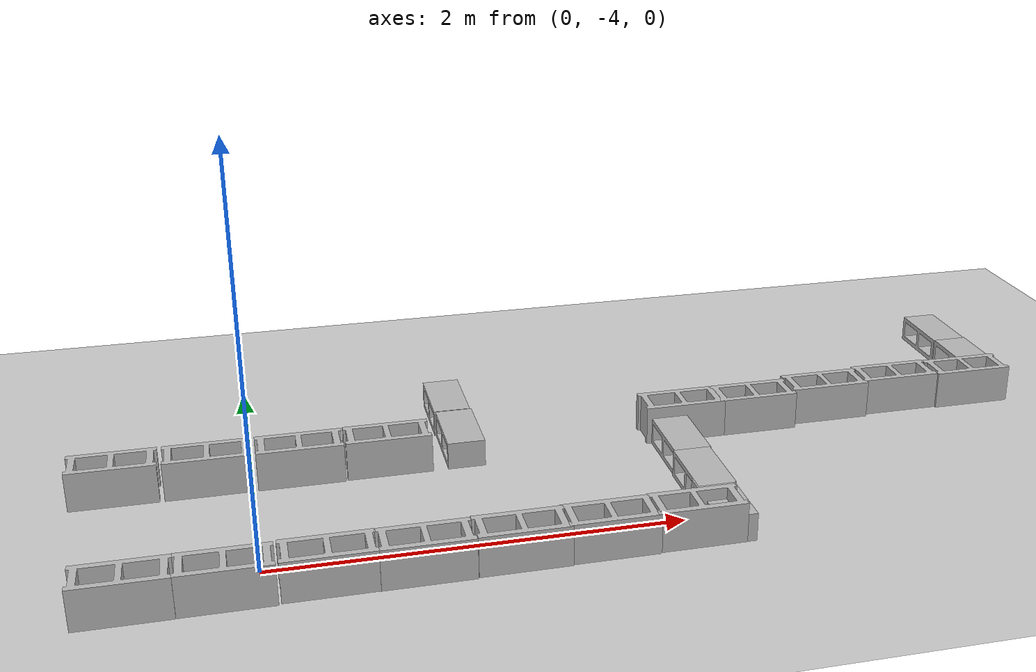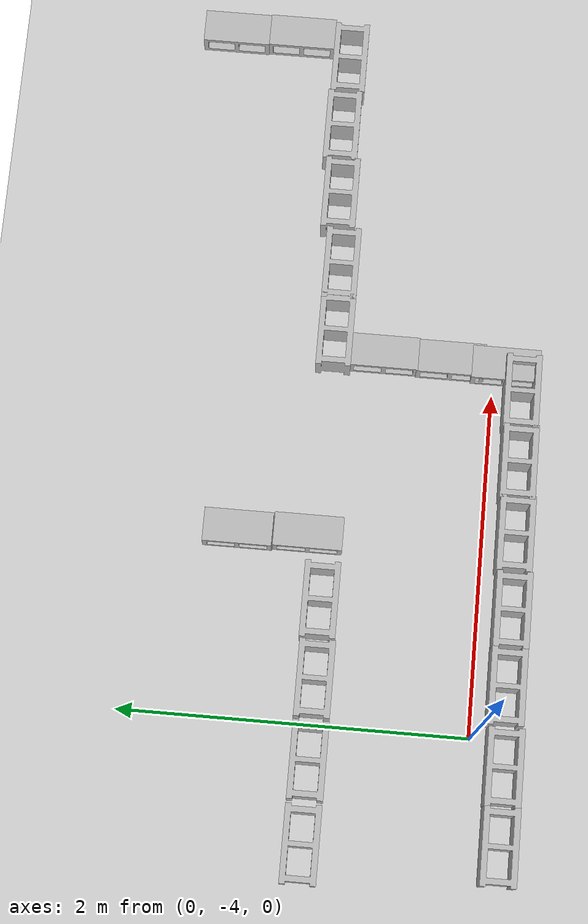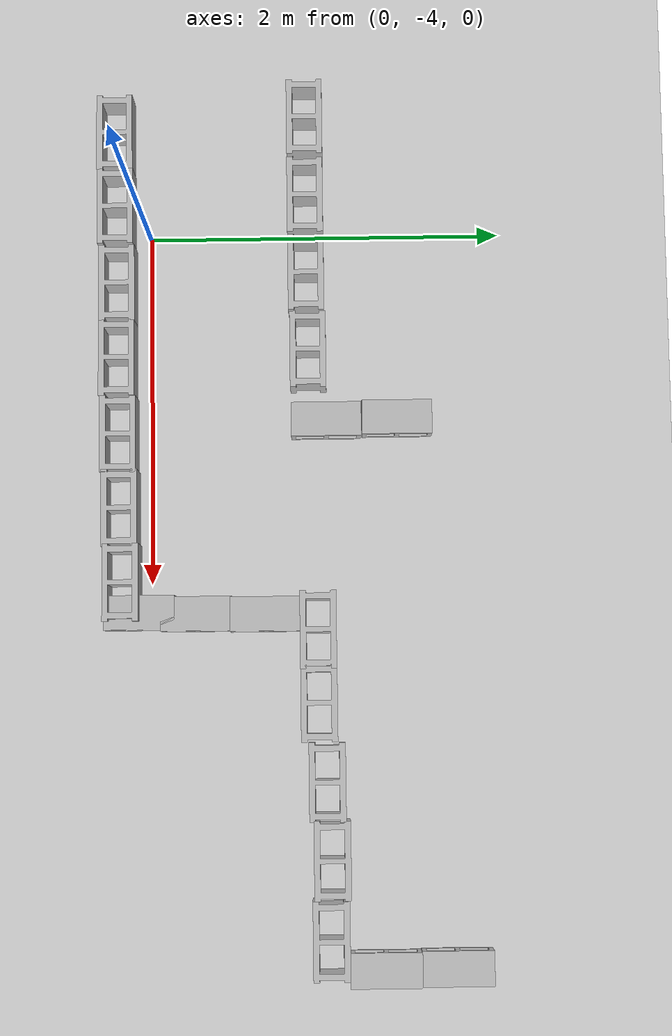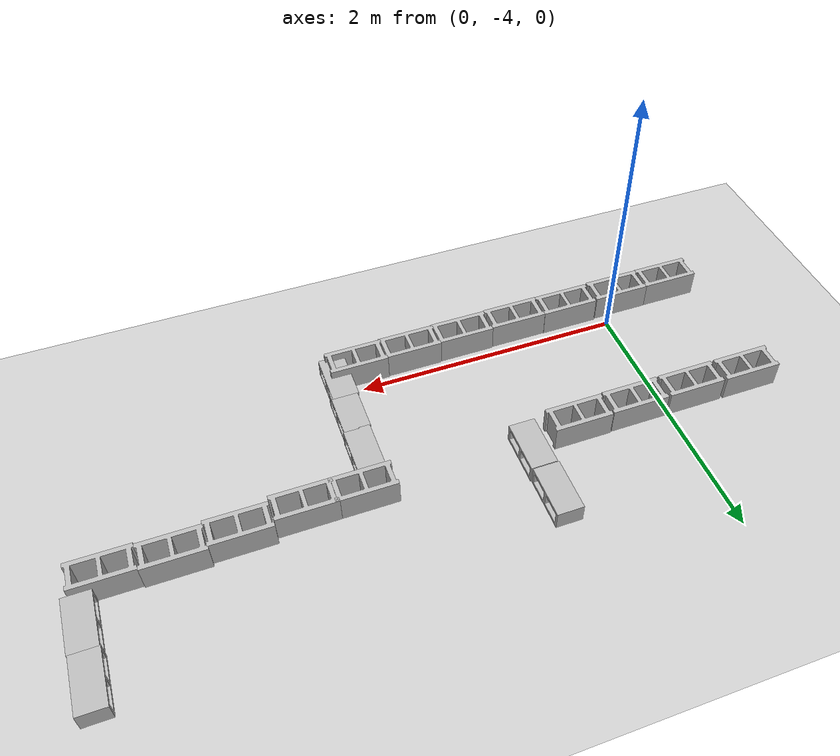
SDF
<sdf version="1.7">
 <world name="default">
  <model name="ground_plane">
   <static>1</static>
   <link name="link">
    <collision name="collision">
     <geometry><plane><normal>0 0 1</normal><size>100 100</size></plane></geometry>
     <surface>
      <contact><collide_bitmask>65535</collide_bitmask></contact>
      <friction><ode><mu>100</mu><mu2>50</mu2></ode></friction>
     </surface>
    </collision>
    <visual name="visual">
     <cast_shadows>0</cast_shadows>
     <geometry><plane><normal>0 0 1</normal><size>100 100</size></plane></geometry>
     <material>
      <script><uri>file://media/materials/scripts/gazebo.material</uri><name>Gazebo/Grey</name></script>
     </material>
    </visual>
   </link>
  </model>
  <model name="cinder_block_2_9">
   <link name="link">
    <inertial>
     <pose>0 0 0.071438 0 -0 0</pose>
     <mass>5</mass>
     <inertia>
      <ixx>0.06908</ixx>
      <ixy>0</ixy>
      <iyy>0.028705</iyy>
      <ixz>0</ixz>
      <iyz>0</iyz>
      <izz>0.073708</izz>
     </inertia>
    </inertial>
    <visual name="visual">
     <geometry><mesh><uri>model://cinder_block_2/meshes/cinder_block.dae</uri></mesh></geometry>
    </visual>
    <collision name="top">
     <pose>0 0 0.130175 0 -0 0</pose>
     <geometry><box><size>0.19368 0.396875 0.0254</size></box></geometry>
     <surface>
      <contact><ode><max_vel>0.1</max_vel><min_depth>0.001</min_depth></ode></contact>
      <friction><ode><mu>1</mu><mu2>1</mu2></ode></friction>
     </surface>
    </collision>
    <collision name="bottom">
     <pose>0 0 0.0127 0 -0 0</pose>
     <geometry><box><size>0.19368 0.396875 0.0254</size></box></geometry>
     <surface>
      <contact><ode><max_vel>0.1</max_vel><min_depth>0.001</min_depth></ode></contact>
      <friction><ode><mu>1</mu><mu2>1</mu2></ode></friction>
     </surface>
    </collision>
    <collision name="left">
     <pose>0 -0.185738 0.071438 0 -0 0</pose>
     <geometry><box><size>0.19368 0.0254 0.092075</size></box></geometry>
     <surface>
      <contact><ode><max_vel>0.1</max_vel><min_depth>0.001</min_depth></ode></contact>
      <friction><ode><mu>1</mu><mu2>1</mu2></ode></friction>
     </surface>
    </collision>
    <collision name="right">
     <pose>0 0.185738 0.071438 0 -0 0</pose>
     <geometry><box><size>0.19368 0.0254 0.092075</size></box></geometry>
     <surface>
      <contact><ode><max_vel>0.1</max_vel><min_depth>0.001</min_depth></ode></contact>
      <friction><ode><mu>1</mu><mu2>1</mu2></ode></friction>
     </surface>
    </collision>
    <collision name="middle">
     <pose>0 0 0.071438 0 -0 0</pose>
     <geometry><box><size>0.19368 0.0254 0.092075</size></box></geometry>
     <surface>
      <contact><ode><max_vel>0.1</max_vel><min_depth>0.001</min_depth></ode></contact>
      <friction><ode><mu>1</mu><mu2>1</mu2></ode></friction>
     </surface>
    </collision>
   </link>
   <pose>1.07664 -2.60128 0 0 -0 0</pose>
  </model>
  <model name="cinder_block_2_10">
   <link name="link">
    <inertial>
     <pose>0 0 0.071438 0 -0 0</pose>
     <mass>5</mass>
     <inertia>
      <ixx>0.06908</ixx>
      <ixy>0</ixy>
      <iyy>0.028705</iyy>
      <ixz>0</ixz>
      <iyz>0</iyz>
      <izz>0.073708</izz>
     </inertia>
    </inertial>
    <visual name="visual">
     <geometry><mesh><uri>model://cinder_block_2/meshes/cinder_block.dae</uri></mesh></geometry>
    </visual>
    <collision name="top">
     <pose>0 0 0.130175 0 -0 0</pose>
     <geometry><box><size>0.19368 0.396875 0.0254</size></box></geometry>
     <surface>
      <contact><ode><max_vel>0.1</max_vel><min_depth>0.001</min_depth></ode></contact>
      <friction><ode><mu>1</mu><mu2>1</mu2></ode></friction>
     </surface>
    </collision>
    <collision name="bottom">
     <pose>0 0 0.0127 0 -0 0</pose>
     <geometry><box><size>0.19368 0.396875 0.0254</size></box></geometry>
     <surface>
      <contact><ode><max_vel>0.1</max_vel><min_depth>0.001</min_depth></ode></contact>
      <friction><ode><mu>1</mu><mu2>1</mu2></ode></friction>
     </surface>
    </collision>
    <collision name="left">
     <pose>0 -0.185738 0.071438 0 -0 0</pose>
     <geometry><box><size>0.19368 0.0254 0.092075</size></box></geometry>
     <surface>
      <contact><ode><max_vel>0.1</max_vel><min_depth>0.001</min_depth></ode></contact>
      <friction><ode><mu>1</mu><mu2>1</mu2></ode></friction>
     </surface>
    </collision>
    <collision name="right">
     <pose>0 0.185738 0.071438 0 -0 0</pose>
     <geometry><box><size>0.19368 0.0254 0.092075</size></box></geometry>
     <surface>
      <contact><ode><max_vel>0.1</max_vel><min_depth>0.001</min_depth></ode></contact>
      <friction><ode><mu>1</mu><mu2>1</mu2></ode></friction>
     </surface>
    </collision>
    <collision name="middle">
     <pose>0 0 0.071438 0 -0 0</pose>
     <geometry><box><size>0.19368 0.0254 0.092075</size></box></geometry>
     <surface>
      <contact><ode><max_vel>0.1</max_vel><min_depth>0.001</min_depth></ode></contact>
      <friction><ode><mu>1</mu><mu2>1</mu2></ode></friction>
     </surface>
    </collision>
   </link>
   <pose>1.08379 -3.00331 0 0 -0 0</pose>
  </model>
  <model name="cinder_block_11">
   <link name="link">
    <inertial>
     <pose>0 0 0.1016 0 -0 0</pose>
     <mass>5</mass>
     <inertia>
      <ixx>0.028705</ixx>
      <ixy>0</ixy>
      <iyy>0.073708</iyy>
      <ixz>0</ixz>
      <iyz>0</iyz>
      <izz>0.06908</izz>
     </inertia>
    </inertial>
    <visual name="visual">
     <geometry><mesh><uri>model://cinder_block/meshes/cinder_block.dae</uri></mesh></geometry>
    </visual>
    <collision name="left">
     <pose>0 -0.08465 0.1016 0 -0 0</pose>
     <geometry><box><size>0.43495 0.0339 0.2032</size></box></geometry>
     <surface>
      <contact><ode><max_vel>0.1</max_vel><min_depth>0.001</min_depth></ode></contact>
      <friction><ode><mu>1</mu><mu2>1</mu2></ode></friction>
     </surface>
    </collision>
    <collision name="right">
     <pose>0 0.08465 0.1016 0 -0 0</pose>
     <geometry><box><size>0.43495 0.0339 0.2032</size></box></geometry>
     <surface>
      <contact><ode><max_vel>0.1</max_vel><min_depth>0.001</min_depth></ode></contact>
      <friction><ode><mu>1</mu><mu2>1</mu2></ode></friction>
     </surface>
    </collision>
    <collision name="front">
     <pose>0.18625 0 0.1016 0 -0 0</pose>
     <geometry><box><size>0.0339 0.1354 0.203</size></box></geometry>
     <surface>
      <contact><ode><max_vel>0.1</max_vel><min_depth>0.001</min_depth></ode></contact>
      <friction><ode><mu>1</mu><mu2>1</mu2></ode></friction>
     </surface>
    </collision>
    <collision name="middle">
     <pose>0 0 0.1016 0 -0 0</pose>
     <geometry><box><size>0.0339 0.1354 0.203</size></box></geometry>
     <surface>
      <contact><ode><max_vel>0.1</max_vel><min_depth>0.001</min_depth></ode></contact>
      <friction><ode><mu>1</mu><mu2>1</mu2></ode></friction>
     </surface>
    </collision>
    <collision name="back">
     <pose>-0.18625 0 0.1016 0 -0 0</pose>
     <geometry><box><size>0.0339 0.1354 0.203</size></box></geometry>
     <surface>
      <contact><ode><max_vel>0.1</max_vel><min_depth>0.001</min_depth></ode></contact>
      <friction><ode><mu>1</mu><mu2>1</mu2></ode></friction>
     </surface>
    </collision>
   </link>
   <pose>0.692084 -3.10191 0 0 -0 0</pose>
  </model>
  <model name="cinder_block_12">
   <link name="link">
    <inertial>
     <pose>0 0 0.1016 0 -0 0</pose>
     <mass>5</mass>
     <inertia>
      <ixx>0.028705</ixx>
      <ixy>0</ixy>
      <iyy>0.073708</iyy>
      <ixz>0</ixz>
      <iyz>0</iyz>
      <izz>0.06908</izz>
     </inertia>
    </inertial>
    <visual name="visual">
     <geometry><mesh><uri>model://cinder_block/meshes/cinder_block.dae</uri></mesh></geometry>
    </visual>
    <collision name="left">
     <pose>0 -0.08465 0.1016 0 -0 0</pose>
     <geometry><box><size>0.43495 0.0339 0.2032</size></box></geometry>
     <surface>
      <contact><ode><max_vel>0.1</max_vel><min_depth>0.001</min_depth></ode></contact>
      <friction><ode><mu>1</mu><mu2>1</mu2></ode></friction>
     </surface>
    </collision>
    <collision name="right">
     <pose>0 0.08465 0.1016 0 -0 0</pose>
     <geometry><box><size>0.43495 0.0339 0.2032</size></box></geometry>
     <surface>
      <contact><ode><max_vel>0.1</max_vel><min_depth>0.001</min_depth></ode></contact>
      <friction><ode><mu>1</mu><mu2>1</mu2></ode></friction>
     </surface>
    </collision>
    <collision name="front">
     <pose>0.18625 0 0.1016 0 -0 0</pose>
     <geometry><box><size>0.0339 0.1354 0.203</size></box></geometry>
     <surface>
      <contact><ode><max_vel>0.1</max_vel><min_depth>0.001</min_depth></ode></contact>
      <friction><ode><mu>1</mu><mu2>1</mu2></ode></friction>
     </surface>
    </collision>
    <collision name="middle">
     <pose>0 0 0.1016 0 -0 0</pose>
     <geometry><box><size>0.0339 0.1354 0.203</size></box></geometry>
     <surface>
      <contact><ode><max_vel>0.1</max_vel><min_depth>0.001</min_depth></ode></contact>
      <friction><ode><mu>1</mu><mu2>1</mu2></ode></friction>
     </surface>
    </collision>
    <collision name="back">
     <pose>-0.18625 0 0.1016 0 -0 0</pose>
     <geometry><box><size>0.0339 0.1354 0.203</size></box></geometry>
     <surface>
      <contact><ode><max_vel>0.1</max_vel><min_depth>0.001</min_depth></ode></contact>
      <friction><ode><mu>1</mu><mu2>1</mu2></ode></friction>
     </surface>
    </collision>
   </link>
   <pose>0.247793 -3.10823 0 0 -0 0</pose>
  </model>
  <model name="cinder_block_13">
   <link name="link">
    <inertial>
     <pose>0 0 0.1016 0 -0 0</pose>
     <mass>5</mass>
     <inertia>
      <ixx>0.028705</ixx>
      <ixy>0</ixy>
      <iyy>0.073708</iyy>
      <ixz>0</ixz>
      <iyz>0</iyz>
      <izz>0.06908</izz>
     </inertia>
    </inertial>
    <visual name="visual">
     <geometry><mesh><uri>model://cinder_block/meshes/cinder_block.dae</uri></mesh></geometry>
    </visual>
    <collision name="left">
     <pose>0 -0.08465 0.1016 0 -0 0</pose>
     <geometry><box><size>0.43495 0.0339 0.2032</size></box></geometry>
     <surface>
      <contact><ode><max_vel>0.1</max_vel><min_depth>0.001</min_depth></ode></contact>
      <friction><ode><mu>1</mu><mu2>1</mu2></ode></friction>
     </surface>
    </collision>
    <collision name="right">
     <pose>0 0.08465 0.1016 0 -0 0</pose>
     <geometry><box><size>0.43495 0.0339 0.2032</size></box></geometry>
     <surface>
      <contact><ode><max_vel>0.1</max_vel><min_depth>0.001</min_depth></ode></contact>
      <friction><ode><mu>1</mu><mu2>1</mu2></ode></friction>
     </surface>
    </collision>
    <collision name="front">
     <pose>0.18625 0 0.1016 0 -0 0</pose>
     <geometry><box><size>0.0339 0.1354 0.203</size></box></geometry>
     <surface>
      <contact><ode><max_vel>0.1</max_vel><min_depth>0.001</min_depth></ode></contact>
      <friction><ode><mu>1</mu><mu2>1</mu2></ode></friction>
     </surface>
    </collision>
    <collision name="middle">
     <pose>0 0 0.1016 0 -0 0</pose>
     <geometry><box><size>0.0339 0.1354 0.203</size></box></geometry>
     <surface>
      <contact><ode><max_vel>0.1</max_vel><min_depth>0.001</min_depth></ode></contact>
      <friction><ode><mu>1</mu><mu2>1</mu2></ode></friction>
     </surface>
    </collision>
    <collision name="back">
     <pose>-0.18625 0 0.1016 0 -0 0</pose>
     <geometry><box><size>0.0339 0.1354 0.203</size></box></geometry>
     <surface>
      <contact><ode><max_vel>0.1</max_vel><min_depth>0.001</min_depth></ode></contact>
      <friction><ode><mu>1</mu><mu2>1</mu2></ode></friction>
     </surface>
    </collision>
   </link>
   <pose>-0.204538 -3.1092 0 0 -0 0</pose>
  </model>
  <model name="cinder_block_14">
   <link name="link">
    <inertial>
     <pose>0 0 0.1016 0 -0 0</pose>
     <mass>5</mass>
     <inertia>
      <ixx>0.028705</ixx>
      <ixy>0</ixy>
      <iyy>0.073708</iyy>
      <ixz>0</ixz>
      <iyz>0</iyz>
      <izz>0.06908</izz>
     </inertia>
    </inertial>
    <visual name="visual">
     <geometry><mesh><uri>model://cinder_block/meshes/cinder_block.dae</uri></mesh></geometry>
    </visual>
    <collision name="left">
     <pose>0 -0.08465 0.1016 0 -0 0</pose>
     <geometry><box><size>0.43495 0.0339 0.2032</size></box></geometry>
     <surface>
      <contact><ode><max_vel>0.1</max_vel><min_depth>0.001</min_depth></ode></contact>
      <friction><ode><mu>1</mu><mu2>1</mu2></ode></friction>
     </surface>
    </collision>
    <collision name="right">
     <pose>0 0.08465 0.1016 0 -0 0</pose>
     <geometry><box><size>0.43495 0.0339 0.2032</size></box></geometry>
     <surface>
      <contact><ode><max_vel>0.1</max_vel><min_depth>0.001</min_depth></ode></contact>
      <friction><ode><mu>1</mu><mu2>1</mu2></ode></friction>
     </surface>
    </collision>
    <collision name="front">
     <pose>0.18625 0 0.1016 0 -0 0</pose>
     <geometry><box><size>0.0339 0.1354 0.203</size></box></geometry>
     <surface>
      <contact><ode><max_vel>0.1</max_vel><min_depth>0.001</min_depth></ode></contact>
      <friction><ode><mu>1</mu><mu2>1</mu2></ode></friction>
     </surface>
    </collision>
    <collision name="middle">
     <pose>0 0 0.1016 0 -0 0</pose>
     <geometry><box><size>0.0339 0.1354 0.203</size></box></geometry>
     <surface>
      <contact><ode><max_vel>0.1</max_vel><min_depth>0.001</min_depth></ode></contact>
      <friction><ode><mu>1</mu><mu2>1</mu2></ode></friction>
     </surface>
    </collision>
    <collision name="back">
     <pose>-0.18625 0 0.1016 0 -0 0</pose>
     <geometry><box><size>0.0339 0.1354 0.203</size></box></geometry>
     <surface>
      <contact><ode><max_vel>0.1</max_vel><min_depth>0.001</min_depth></ode></contact>
      <friction><ode><mu>1</mu><mu2>1</mu2></ode></friction>
     </surface>
    </collision>
   </link>
   <pose>-0.661918 -3.10808 0 0 -0 0</pose>
  </model>
  <model name="cinder_block_29">
   <link name="link">
    <inertial>
     <pose>0 0 0.1016 0 -0 0</pose>
     <mass>5</mass>
     <inertia>
      <ixx>0.028705</ixx>
      <ixy>0</ixy>
      <iyy>0.073708</iyy>
      <ixz>0</ixz>
      <iyz>0</iyz>
      <izz>0.06908</izz>
     </inertia>
    </inertial>
    <visual name="visual">
     <geometry><mesh><uri>model://cinder_block/meshes/cinder_block.dae</uri></mesh></geometry>
    </visual>
    <collision name="left">
     <pose>0 -0.08465 0.1016 0 -0 0</pose>
     <geometry><box><size>0.43495 0.0339 0.2032</size></box></geometry>
     <surface>
      <contact><ode><max_vel>0.1</max_vel><min_depth>0.001</min_depth></ode></contact>
      <friction><ode><mu>1</mu><mu2>1</mu2></ode></friction>
     </surface>
    </collision>
    <collision name="right">
     <pose>0 0.08465 0.1016 0 -0 0</pose>
     <geometry><box><size>0.43495 0.0339 0.2032</size></box></geometry>
     <surface>
      <contact><ode><max_vel>0.1</max_vel><min_depth>0.001</min_depth></ode></contact>
      <friction><ode><mu>1</mu><mu2>1</mu2></ode></friction>
     </surface>
    </collision>
    <collision name="front">
     <pose>0.18625 0 0.1016 0 -0 0</pose>
     <geometry><box><size>0.0339 0.1354 0.203</size></box></geometry>
     <surface>
      <contact><ode><max_vel>0.1</max_vel><min_depth>0.001</min_depth></ode></contact>
      <friction><ode><mu>1</mu><mu2>1</mu2></ode></friction>
     </surface>
    </collision>
    <collision name="middle">
     <pose>0 0 0.1016 0 -0 0</pose>
     <geometry><box><size>0.0339 0.1354 0.203</size></box></geometry>
     <surface>
      <contact><ode><max_vel>0.1</max_vel><min_depth>0.001</min_depth></ode></contact>
      <friction><ode><mu>1</mu><mu2>1</mu2></ode></friction>
     </surface>
    </collision>
    <collision name="back">
     <pose>-0.18625 0 0.1016 0 -0 0</pose>
     <geometry><box><size>0.0339 0.1354 0.203</size></box></geometry>
     <surface>
      <contact><ode><max_vel>0.1</max_vel><min_depth>0.001</min_depth></ode></contact>
      <friction><ode><mu>1</mu><mu2>1</mu2></ode></friction>
     </surface>
    </collision>
   </link>
   <pose>-0.582725 -4.19441 0 0 -0 0</pose>
  </model>
  <model name="cinder_block_2_21">
   <link name="link">
    <inertial>
     <pose>0 0 0.071438 0 -0 0</pose>
     <mass>5</mass>
     <inertia>
      <ixx>0.06908</ixx>
      <ixy>0</ixy>
      <iyy>0.028705</iyy>
      <ixz>0</ixz>
      <iyz>0</iyz>
      <izz>0.073708</izz>
     </inertia>
    </inertial>
    <visual name="visual">
     <geometry><mesh><uri>model://cinder_block_2/meshes/cinder_block.dae</uri></mesh></geometry>
    </visual>
    <collision name="top">
     <pose>0 0 0.130175 0 -0 0</pose>
     <geometry><box><size>0.19368 0.396875 0.0254</size></box></geometry>
     <surface>
      <contact><ode><max_vel>0.1</max_vel><min_depth>0.001</min_depth></ode></contact>
      <friction><ode><mu>1</mu><mu2>1</mu2></ode></friction>
     </surface>
    </collision>
    <collision name="bottom">
     <pose>0 0 0.0127 0 -0 0</pose>
     <geometry><box><size>0.19368 0.396875 0.0254</size></box></geometry>
     <surface>
      <contact><ode><max_vel>0.1</max_vel><min_depth>0.001</min_depth></ode></contact>
      <friction><ode><mu>1</mu><mu2>1</mu2></ode></friction>
     </surface>
    </collision>
    <collision name="left">
     <pose>0 -0.185738 0.071438 0 -0 0</pose>
     <geometry><box><size>0.19368 0.0254 0.092075</size></box></geometry>
     <surface>
      <contact><ode><max_vel>0.1</max_vel><min_depth>0.001</min_depth></ode></contact>
      <friction><ode><mu>1</mu><mu2>1</mu2></ode></friction>
     </surface>
    </collision>
    <collision name="right">
     <pose>0 0.185738 0.071438 0 -0 0</pose>
     <geometry><box><size>0.19368 0.0254 0.092075</size></box></geometry>
     <surface>
      <contact><ode><max_vel>0.1</max_vel><min_depth>0.001</min_depth></ode></contact>
      <friction><ode><mu>1</mu><mu2>1</mu2></ode></friction>
     </surface>
    </collision>
    <collision name="middle">
     <pose>0 0 0.071438 0 -0 0</pose>
     <geometry><box><size>0.19368 0.0254 0.092075</size></box></geometry>
     <surface>
      <contact><ode><max_vel>0.1</max_vel><min_depth>0.001</min_depth></ode></contact>
      <friction><ode><mu>1</mu><mu2>1</mu2></ode></friction>
     </surface>
    </collision>
   </link>
   <pose>4.14555 -2.31359 0 0 -0 0</pose>
  </model>
  <model name="cinder_block_2_22">
   <link name="link">
    <inertial>
     <pose>0 0 0.071438 0 -0 0</pose>
     <mass>5</mass>
     <inertia>
      <ixx>0.06908</ixx>
      <ixy>0</ixy>
      <iyy>0.028705</iyy>
      <ixz>0</ixz>
      <iyz>0</iyz>
      <izz>0.073708</izz>
     </inertia>
    </inertial>
    <visual name="visual">
     <geometry><mesh><uri>model://cinder_block_2/meshes/cinder_block.dae</uri></mesh></geometry>
    </visual>
    <collision name="top">
     <pose>0 0 0.130175 0 -0 0</pose>
     <geometry><box><size>0.19368 0.396875 0.0254</size></box></geometry>
     <surface>
      <contact><ode><max_vel>0.1</max_vel><min_depth>0.001</min_depth></ode></contact>
      <friction><ode><mu>1</mu><mu2>1</mu2></ode></friction>
     </surface>
    </collision>
    <collision name="bottom">
     <pose>0 0 0.0127 0 -0 0</pose>
     <geometry><box><size>0.19368 0.396875 0.0254</size></box></geometry>
     <surface>
      <contact><ode><max_vel>0.1</max_vel><min_depth>0.001</min_depth></ode></contact>
      <friction><ode><mu>1</mu><mu2>1</mu2></ode></friction>
     </surface>
    </collision>
    <collision name="left">
     <pose>0 -0.185738 0.071438 0 -0 0</pose>
     <geometry><box><size>0.19368 0.0254 0.092075</size></box></geometry>
     <surface>
      <contact><ode><max_vel>0.1</max_vel><min_depth>0.001</min_depth></ode></contact>
      <friction><ode><mu>1</mu><mu2>1</mu2></ode></friction>
     </surface>
    </collision>
    <collision name="right">
     <pose>0 0.185738 0.071438 0 -0 0</pose>
     <geometry><box><size>0.19368 0.0254 0.092075</size></box></geometry>
     <surface>
      <contact><ode><max_vel>0.1</max_vel><min_depth>0.001</min_depth></ode></contact>
      <friction><ode><mu>1</mu><mu2>1</mu2></ode></friction>
     </surface>
    </collision>
    <collision name="middle">
     <pose>0 0 0.071438 0 -0 0</pose>
     <geometry><box><size>0.19368 0.0254 0.092075</size></box></geometry>
     <surface>
      <contact><ode><max_vel>0.1</max_vel><min_depth>0.001</min_depth></ode></contact>
      <friction><ode><mu>1</mu><mu2>1</mu2></ode></friction>
     </surface>
    </collision>
   </link>
   <pose>4.15072 -2.70833 0 0 -0 0</pose>
  </model>
  <model name="cinder_block_30">
   <link name="link">
    <inertial>
     <pose>0 0 0.1016 0 -0 0</pose>
     <mass>5</mass>
     <inertia>
      <ixx>0.028705</ixx>
      <ixy>0</ixy>
      <iyy>0.073708</iyy>
      <ixz>0</ixz>
      <iyz>0</iyz>
      <izz>0.06908</izz>
     </inertia>
    </inertial>
    <visual name="visual">
     <geometry><mesh><uri>model://cinder_block/meshes/cinder_block.dae</uri></mesh></geometry>
    </visual>
    <collision name="left">
     <pose>0 -0.08465 0.1016 0 -0 0</pose>
     <geometry><box><size>0.43495 0.0339 0.2032</size></box></geometry>
     <surface>
      <contact><ode><max_vel>0.1</max_vel><min_depth>0.001</min_depth></ode></contact>
      <friction><ode><mu>1</mu><mu2>1</mu2></ode></friction>
     </surface>
    </collision>
    <collision name="right">
     <pose>0 0.08465 0.1016 0 -0 0</pose>
     <geometry><box><size>0.43495 0.0339 0.2032</size></box></geometry>
     <surface>
      <contact><ode><max_vel>0.1</max_vel><min_depth>0.001</min_depth></ode></contact>
      <friction><ode><mu>1</mu><mu2>1</mu2></ode></friction>
     </surface>
    </collision>
    <collision name="front">
     <pose>0.18625 0 0.1016 0 -0 0</pose>
     <geometry><box><size>0.0339 0.1354 0.203</size></box></geometry>
     <surface>
      <contact><ode><max_vel>0.1</max_vel><min_depth>0.001</min_depth></ode></contact>
      <friction><ode><mu>1</mu><mu2>1</mu2></ode></friction>
     </surface>
    </collision>
    <collision name="middle">
     <pose>0 0 0.1016 0 -0 0</pose>
     <geometry><box><size>0.0339 0.1354 0.203</size></box></geometry>
     <surface>
      <contact><ode><max_vel>0.1</max_vel><min_depth>0.001</min_depth></ode></contact>
      <friction><ode><mu>1</mu><mu2>1</mu2></ode></friction>
     </surface>
    </collision>
    <collision name="back">
     <pose>-0.18625 0 0.1016 0 -0 0</pose>
     <geometry><box><size>0.0339 0.1354 0.203</size></box></geometry>
     <surface>
      <contact><ode><max_vel>0.1</max_vel><min_depth>0.001</min_depth></ode></contact>
      <friction><ode><mu>1</mu><mu2>1</mu2></ode></friction>
     </surface>
    </collision>
   </link>
   <pose>3.985 -3.00822 0 0 -0 0</pose>
  </model>
  <model name="cinder_block_31">
   <link name="link">
    <inertial>
     <pose>0 0 0.1016 0 -0 0</pose>
     <mass>5</mass>
     <inertia>
      <ixx>0.028705</ixx>
      <ixy>0</ixy>
      <iyy>0.073708</iyy>
      <ixz>0</ixz>
      <iyz>0</iyz>
      <izz>0.06908</izz>
     </inertia>
    </inertial>
    <visual name="visual">
     <geometry><mesh><uri>model://cinder_block/meshes/cinder_block.dae</uri></mesh></geometry>
    </visual>
    <collision name="left">
     <pose>0 -0.08465 0.1016 0 -0 0</pose>
     <geometry><box><size>0.43495 0.0339 0.2032</size></box></geometry>
     <surface>
      <contact><ode><max_vel>0.1</max_vel><min_depth>0.001</min_depth></ode></contact>
      <friction><ode><mu>1</mu><mu2>1</mu2></ode></friction>
     </surface>
    </collision>
    <collision name="right">
     <pose>0 0.08465 0.1016 0 -0 0</pose>
     <geometry><box><size>0.43495 0.0339 0.2032</size></box></geometry>
     <surface>
      <contact><ode><max_vel>0.1</max_vel><min_depth>0.001</min_depth></ode></contact>
      <friction><ode><mu>1</mu><mu2>1</mu2></ode></friction>
     </surface>
    </collision>
    <collision name="front">
     <pose>0.18625 0 0.1016 0 -0 0</pose>
     <geometry><box><size>0.0339 0.1354 0.203</size></box></geometry>
     <surface>
      <contact><ode><max_vel>0.1</max_vel><min_depth>0.001</min_depth></ode></contact>
      <friction><ode><mu>1</mu><mu2>1</mu2></ode></friction>
     </surface>
    </collision>
    <collision name="middle">
     <pose>0 0 0.1016 0 -0 0</pose>
     <geometry><box><size>0.0339 0.1354 0.203</size></box></geometry>
     <surface>
      <contact><ode><max_vel>0.1</max_vel><min_depth>0.001</min_depth></ode></contact>
      <friction><ode><mu>1</mu><mu2>1</mu2></ode></friction>
     </surface>
    </collision>
    <collision name="back">
     <pose>-0.18625 0 0.1016 0 -0 0</pose>
     <geometry><box><size>0.0339 0.1354 0.203</size></box></geometry>
     <surface>
      <contact><ode><max_vel>0.1</max_vel><min_depth>0.001</min_depth></ode></contact>
      <friction><ode><mu>1</mu><mu2>1</mu2></ode></friction>
     </surface>
    </collision>
   </link>
   <pose>3.54945 -2.99764 0 0 -0 0</pose>
  </model>
  <model name="cinder_block_32">
   <link name="link">
    <inertial>
     <pose>0 0 0.1016 0 -0 0</pose>
     <mass>5</mass>
     <inertia>
      <ixx>0.028705</ixx>
      <ixy>0</ixy>
      <iyy>0.073708</iyy>
      <ixz>0</ixz>
      <iyz>0</iyz>
      <izz>0.06908</izz>
     </inertia>
    </inertial>
    <visual name="visual">
     <geometry><mesh><uri>model://cinder_block/meshes/cinder_block.dae</uri></mesh></geometry>
    </visual>
    <collision name="left">
     <pose>0 -0.08465 0.1016 0 -0 0</pose>
     <geometry><box><size>0.43495 0.0339 0.2032</size></box></geometry>
     <surface>
      <contact><ode><max_vel>0.1</max_vel><min_depth>0.001</min_depth></ode></contact>
      <friction><ode><mu>1</mu><mu2>1</mu2></ode></friction>
     </surface>
    </collision>
    <collision name="right">
     <pose>0 0.08465 0.1016 0 -0 0</pose>
     <geometry><box><size>0.43495 0.0339 0.2032</size></box></geometry>
     <surface>
      <contact><ode><max_vel>0.1</max_vel><min_depth>0.001</min_depth></ode></contact>
      <friction><ode><mu>1</mu><mu2>1</mu2></ode></friction>
     </surface>
    </collision>
    <collision name="front">
     <pose>0.18625 0 0.1016 0 -0 0</pose>
     <geometry><box><size>0.0339 0.1354 0.203</size></box></geometry>
     <surface>
      <contact><ode><max_vel>0.1</max_vel><min_depth>0.001</min_depth></ode></contact>
      <friction><ode><mu>1</mu><mu2>1</mu2></ode></friction>
     </surface>
    </collision>
    <collision name="middle">
     <pose>0 0 0.1016 0 -0 0</pose>
     <geometry><box><size>0.0339 0.1354 0.203</size></box></geometry>
     <surface>
      <contact><ode><max_vel>0.1</max_vel><min_depth>0.001</min_depth></ode></contact>
      <friction><ode><mu>1</mu><mu2>1</mu2></ode></friction>
     </surface>
    </collision>
    <collision name="back">
     <pose>-0.18625 0 0.1016 0 -0 0</pose>
     <geometry><box><size>0.0339 0.1354 0.203</size></box></geometry>
     <surface>
      <contact><ode><max_vel>0.1</max_vel><min_depth>0.001</min_depth></ode></contact>
      <friction><ode><mu>1</mu><mu2>1</mu2></ode></friction>
     </surface>
    </collision>
   </link>
   <pose>3.12161 -3.02045 0 0 -0 0</pose>
  </model>
  <model name="cinder_block_33">
   <link name="link">
    <inertial>
     <pose>0 0 0.1016 0 -0 0</pose>
     <mass>5</mass>
     <inertia>
      <ixx>0.028705</ixx>
      <ixy>0</ixy>
      <iyy>0.073708</iyy>
      <ixz>0</ixz>
      <iyz>0</iyz>
      <izz>0.06908</izz>
     </inertia>
    </inertial>
    <visual name="visual">
     <geometry><mesh><uri>model://cinder_block/meshes/cinder_block.dae</uri></mesh></geometry>
    </visual>
    <collision name="left">
     <pose>0 -0.08465 0.1016 0 -0 0</pose>
     <geometry><box><size>0.43495 0.0339 0.2032</size></box></geometry>
     <surface>
      <contact><ode><max_vel>0.1</max_vel><min_depth>0.001</min_depth></ode></contact>
      <friction><ode><mu>1</mu><mu2>1</mu2></ode></friction>
     </surface>
    </collision>
    <collision name="right">
     <pose>0 0.08465 0.1016 0 -0 0</pose>
     <geometry><box><size>0.43495 0.0339 0.2032</size></box></geometry>
     <surface>
      <contact><ode><max_vel>0.1</max_vel><min_depth>0.001</min_depth></ode></contact>
      <friction><ode><mu>1</mu><mu2>1</mu2></ode></friction>
     </surface>
    </collision>
    <collision name="front">
     <pose>0.18625 0 0.1016 0 -0 0</pose>
     <geometry><box><size>0.0339 0.1354 0.203</size></box></geometry>
     <surface>
      <contact><ode><max_vel>0.1</max_vel><min_depth>0.001</min_depth></ode></contact>
      <friction><ode><mu>1</mu><mu2>1</mu2></ode></friction>
     </surface>
    </collision>
    <collision name="middle">
     <pose>0 0 0.1016 0 -0 0</pose>
     <geometry><box><size>0.0339 0.1354 0.203</size></box></geometry>
     <surface>
      <contact><ode><max_vel>0.1</max_vel><min_depth>0.001</min_depth></ode></contact>
      <friction><ode><mu>1</mu><mu2>1</mu2></ode></friction>
     </surface>
    </collision>
    <collision name="back">
     <pose>-0.18625 0 0.1016 0 -0 0</pose>
     <geometry><box><size>0.0339 0.1354 0.203</size></box></geometry>
     <surface>
      <contact><ode><max_vel>0.1</max_vel><min_depth>0.001</min_depth></ode></contact>
      <friction><ode><mu>1</mu><mu2>1</mu2></ode></friction>
     </surface>
    </collision>
   </link>
   <pose>2.68427 -3.06116 0 0 -0 0</pose>
  </model>
  <model name="cinder_block_34">
   <link name="link">
    <inertial>
     <pose>0 0 0.1016 0 -0 0</pose>
     <mass>5</mass>
     <inertia>
      <ixx>0.028705</ixx>
      <ixy>0</ixy>
      <iyy>0.073708</iyy>
      <ixz>0</ixz>
      <iyz>0</iyz>
      <izz>0.06908</izz>
     </inertia>
    </inertial>
    <visual name="visual">
     <geometry><mesh><uri>model://cinder_block/meshes/cinder_block.dae</uri></mesh></geometry>
    </visual>
    <collision name="left">
     <pose>0 -0.08465 0.1016 0 -0 0</pose>
     <geometry><box><size>0.43495 0.0339 0.2032</size></box></geometry>
     <surface>
      <contact><ode><max_vel>0.1</max_vel><min_depth>0.001</min_depth></ode></contact>
      <friction><ode><mu>1</mu><mu2>1</mu2></ode></friction>
     </surface>
    </collision>
    <collision name="right">
     <pose>0 0.08465 0.1016 0 -0 0</pose>
     <geometry><box><size>0.43495 0.0339 0.2032</size></box></geometry>
     <surface>
      <contact><ode><max_vel>0.1</max_vel><min_depth>0.001</min_depth></ode></contact>
      <friction><ode><mu>1</mu><mu2>1</mu2></ode></friction>
     </surface>
    </collision>
    <collision name="front">
     <pose>0.18625 0 0.1016 0 -0 0</pose>
     <geometry><box><size>0.0339 0.1354 0.203</size></box></geometry>
     <surface>
      <contact><ode><max_vel>0.1</max_vel><min_depth>0.001</min_depth></ode></contact>
      <friction><ode><mu>1</mu><mu2>1</mu2></ode></friction>
     </surface>
    </collision>
    <collision name="middle">
     <pose>0 0 0.1016 0 -0 0</pose>
     <geometry><box><size>0.0339 0.1354 0.203</size></box></geometry>
     <surface>
      <contact><ode><max_vel>0.1</max_vel><min_depth>0.001</min_depth></ode></contact>
      <friction><ode><mu>1</mu><mu2>1</mu2></ode></friction>
     </surface>
    </collision>
    <collision name="back">
     <pose>-0.18625 0 0.1016 0 -0 0</pose>
     <geometry><box><size>0.0339 0.1354 0.203</size></box></geometry>
     <surface>
      <contact><ode><max_vel>0.1</max_vel><min_depth>0.001</min_depth></ode></contact>
      <friction><ode><mu>1</mu><mu2>1</mu2></ode></friction>
     </surface>
    </collision>
   </link>
   <pose>2.27743 -3.06176 0 0 -0 0</pose>
  </model>
  <model name="cinder_block_2_23">
   <link name="link">
    <inertial>
     <pose>0 0 0.071438 0 -0 0</pose>
     <mass>5</mass>
     <inertia>
      <ixx>0.06908</ixx>
      <ixy>0</ixy>
      <iyy>0.028705</iyy>
      <ixz>0</ixz>
      <iyz>0</iyz>
      <izz>0.073708</izz>
     </inertia>
    </inertial>
    <visual name="visual">
     <geometry><mesh><uri>model://cinder_block_2/meshes/cinder_block.dae</uri></mesh></geometry>
    </visual>
    <collision name="top">
     <pose>0 0 0.130175 0 -0 0</pose>
     <geometry><box><size>0.19368 0.396875 0.0254</size></box></geometry>
     <surface>
      <contact><ode><max_vel>0.1</max_vel><min_depth>0.001</min_depth></ode></contact>
      <friction><ode><mu>1</mu><mu2>1</mu2></ode></friction>
     </surface>
    </collision>
    <collision name="bottom">
     <pose>0 0 0.0127 0 -0 0</pose>
     <geometry><box><size>0.19368 0.396875 0.0254</size></box></geometry>
     <surface>
      <contact><ode><max_vel>0.1</max_vel><min_depth>0.001</min_depth></ode></contact>
      <friction><ode><mu>1</mu><mu2>1</mu2></ode></friction>
     </surface>
    </collision>
    <collision name="left">
     <pose>0 -0.185738 0.071438 0 -0 0</pose>
     <geometry><box><size>0.19368 0.0254 0.092075</size></box></geometry>
     <surface>
      <contact><ode><max_vel>0.1</max_vel><min_depth>0.001</min_depth></ode></contact>
      <friction><ode><mu>1</mu><mu2>1</mu2></ode></friction>
     </surface>
    </collision>
    <collision name="right">
     <pose>0 0.185738 0.071438 0 -0 0</pose>
     <geometry><box><size>0.19368 0.0254 0.092075</size></box></geometry>
     <surface>
      <contact><ode><max_vel>0.1</max_vel><min_depth>0.001</min_depth></ode></contact>
      <friction><ode><mu>1</mu><mu2>1</mu2></ode></friction>
     </surface>
    </collision>
    <collision name="middle">
     <pose>0 0 0.071438 0 -0 0</pose>
     <geometry><box><size>0.19368 0.0254 0.092075</size></box></geometry>
     <surface>
      <contact><ode><max_vel>0.1</max_vel><min_depth>0.001</min_depth></ode></contact>
      <friction><ode><mu>1</mu><mu2>1</mu2></ode></friction>
     </surface>
    </collision>
   </link>
   <pose>2.18368 -3.35684 0 0 -0 0</pose>
  </model>
  <model name="cinder_block_2_24">
   <link name="link">
    <inertial>
     <pose>0 0 0.071438 0 -0 0</pose>
     <mass>5</mass>
     <inertia>
      <ixx>0.06908</ixx>
      <ixy>0</ixy>
      <iyy>0.028705</iyy>
      <ixz>0</ixz>
      <iyz>0</iyz>
      <izz>0.073708</izz>
     </inertia>
    </inertial>
    <visual name="visual">
     <geometry><mesh><uri>model://cinder_block_2/meshes/cinder_block.dae</uri></mesh></geometry>
    </visual>
    <collision name="top">
     <pose>0 0 0.130175 0 -0 0</pose>
     <geometry><box><size>0.19368 0.396875 0.0254</size></box></geometry>
     <surface>
      <contact><ode><max_vel>0.1</max_vel><min_depth>0.001</min_depth></ode></contact>
      <friction><ode><mu>1</mu><mu2>1</mu2></ode></friction>
     </surface>
    </collision>
    <collision name="bottom">
     <pose>0 0 0.0127 0 -0 0</pose>
     <geometry><box><size>0.19368 0.396875 0.0254</size></box></geometry>
     <surface>
      <contact><ode><max_vel>0.1</max_vel><min_depth>0.001</min_depth></ode></contact>
      <friction><ode><mu>1</mu><mu2>1</mu2></ode></friction>
     </surface>
    </collision>
    <collision name="left">
     <pose>0 -0.185738 0.071438 0 -0 0</pose>
     <geometry><box><size>0.19368 0.0254 0.092075</size></box></geometry>
     <surface>
      <contact><ode><max_vel>0.1</max_vel><min_depth>0.001</min_depth></ode></contact>
      <friction><ode><mu>1</mu><mu2>1</mu2></ode></friction>
     </surface>
    </collision>
    <collision name="right">
     <pose>0 0.185738 0.071438 0 -0 0</pose>
     <geometry><box><size>0.19368 0.0254 0.092075</size></box></geometry>
     <surface>
      <contact><ode><max_vel>0.1</max_vel><min_depth>0.001</min_depth></ode></contact>
      <friction><ode><mu>1</mu><mu2>1</mu2></ode></friction>
     </surface>
    </collision>
    <collision name="middle">
     <pose>0 0 0.071438 0 -0 0</pose>
     <geometry><box><size>0.19368 0.0254 0.092075</size></box></geometry>
     <surface>
      <contact><ode><max_vel>0.1</max_vel><min_depth>0.001</min_depth></ode></contact>
      <friction><ode><mu>1</mu><mu2>1</mu2></ode></friction>
     </surface>
    </collision>
   </link>
   <pose>2.17833 -3.74525 0 0 -0 0</pose>
  </model>
  <model name="cinder_block_35">
   <link name="link">
    <inertial>
     <pose>0 0 0.1016 0 -0 0</pose>
     <mass>5</mass>
     <inertia>
      <ixx>0.028705</ixx>
      <ixy>0</ixy>
      <iyy>0.073708</iyy>
      <ixz>0</ixz>
      <iyz>0</iyz>
      <izz>0.06908</izz>
     </inertia>
    </inertial>
    <visual name="visual">
     <geometry><mesh><uri>model://cinder_block/meshes/cinder_block.dae</uri></mesh></geometry>
    </visual>
    <collision name="left">
     <pose>0 -0.08465 0.1016 0 -0 0</pose>
     <geometry><box><size>0.43495 0.0339 0.2032</size></box></geometry>
     <surface>
      <contact><ode><max_vel>0.1</max_vel><min_depth>0.001</min_depth></ode></contact>
      <friction><ode><mu>1</mu><mu2>1</mu2></ode></friction>
     </surface>
    </collision>
    <collision name="right">
     <pose>0 0.08465 0.1016 0 -0 0</pose>
     <geometry><box><size>0.43495 0.0339 0.2032</size></box></geometry>
     <surface>
      <contact><ode><max_vel>0.1</max_vel><min_depth>0.001</min_depth></ode></contact>
      <friction><ode><mu>1</mu><mu2>1</mu2></ode></friction>
     </surface>
    </collision>
    <collision name="front">
     <pose>0.18625 0 0.1016 0 -0 0</pose>
     <geometry><box><size>0.0339 0.1354 0.203</size></box></geometry>
     <surface>
      <contact><ode><max_vel>0.1</max_vel><min_depth>0.001</min_depth></ode></contact>
      <friction><ode><mu>1</mu><mu2>1</mu2></ode></friction>
     </surface>
    </collision>
    <collision name="middle">
     <pose>0 0 0.1016 0 -0 0</pose>
     <geometry><box><size>0.0339 0.1354 0.203</size></box></geometry>
     <surface>
      <contact><ode><max_vel>0.1</max_vel><min_depth>0.001</min_depth></ode></contact>
      <friction><ode><mu>1</mu><mu2>1</mu2></ode></friction>
     </surface>
    </collision>
    <collision name="back">
     <pose>-0.18625 0 0.1016 0 -0 0</pose>
     <geometry><box><size>0.0339 0.1354 0.203</size></box></geometry>
     <surface>
      <contact><ode><max_vel>0.1</max_vel><min_depth>0.001</min_depth></ode></contact>
      <friction><ode><mu>1</mu><mu2>1</mu2></ode></friction>
     </surface>
    </collision>
   </link>
   <pose>-0.150922 -4.19234 0 0 -0 0</pose>
  </model>
  <model name="cinder_block_36">
   <link name="link">
    <inertial>
     <pose>0 0 0.1016 0 -0 0</pose>
     <mass>5</mass>
     <inertia>
      <ixx>0.028705</ixx>
      <ixy>0</ixy>
      <iyy>0.073708</iyy>
      <ixz>0</ixz>
      <iyz>0</iyz>
      <izz>0.06908</izz>
     </inertia>
    </inertial>
    <visual name="visual">
     <geometry><mesh><uri>model://cinder_block/meshes/cinder_block.dae</uri></mesh></geometry>
    </visual>
    <collision name="left">
     <pose>0 -0.08465 0.1016 0 -0 0</pose>
     <geometry><box><size>0.43495 0.0339 0.2032</size></box></geometry>
     <surface>
      <contact><ode><max_vel>0.1</max_vel><min_depth>0.001</min_depth></ode></contact>
      <friction><ode><mu>1</mu><mu2>1</mu2></ode></friction>
     </surface>
    </collision>
    <collision name="right">
     <pose>0 0.08465 0.1016 0 -0 0</pose>
     <geometry><box><size>0.43495 0.0339 0.2032</size></box></geometry>
     <surface>
      <contact><ode><max_vel>0.1</max_vel><min_depth>0.001</min_depth></ode></contact>
      <friction><ode><mu>1</mu><mu2>1</mu2></ode></friction>
     </surface>
    </collision>
    <collision name="front">
     <pose>0.18625 0 0.1016 0 -0 0</pose>
     <geometry><box><size>0.0339 0.1354 0.203</size></box></geometry>
     <surface>
      <contact><ode><max_vel>0.1</max_vel><min_depth>0.001</min_depth></ode></contact>
      <friction><ode><mu>1</mu><mu2>1</mu2></ode></friction>
     </surface>
    </collision>
    <collision name="middle">
     <pose>0 0 0.1016 0 -0 0</pose>
     <geometry><box><size>0.0339 0.1354 0.203</size></box></geometry>
     <surface>
      <contact><ode><max_vel>0.1</max_vel><min_depth>0.001</min_depth></ode></contact>
      <friction><ode><mu>1</mu><mu2>1</mu2></ode></friction>
     </surface>
    </collision>
    <collision name="back">
     <pose>-0.18625 0 0.1016 0 -0 0</pose>
     <geometry><box><size>0.0339 0.1354 0.203</size></box></geometry>
     <surface>
      <contact><ode><max_vel>0.1</max_vel><min_depth>0.001</min_depth></ode></contact>
      <friction><ode><mu>1</mu><mu2>1</mu2></ode></friction>
     </surface>
    </collision>
   </link>
   <pose>0.295375 -4.18323 0 0 -0 0</pose>
  </model>
  <model name="cinder_block_37">
   <link name="link">
    <inertial>
     <pose>0 0 0.1016 0 -0 0</pose>
     <mass>5</mass>
     <inertia>
      <ixx>0.028705</ixx>
      <ixy>0</ixy>
      <iyy>0.073708</iyy>
      <ixz>0</ixz>
      <iyz>0</iyz>
      <izz>0.06908</izz>
     </inertia>
    </inertial>
    <visual name="visual">
     <geometry><mesh><uri>model://cinder_block/meshes/cinder_block.dae</uri></mesh></geometry>
    </visual>
    <collision name="left">
     <pose>0 -0.08465 0.1016 0 -0 0</pose>
     <geometry><box><size>0.43495 0.0339 0.2032</size></box></geometry>
     <surface>
      <contact><ode><max_vel>0.1</max_vel><min_depth>0.001</min_depth></ode></contact>
      <friction><ode><mu>1</mu><mu2>1</mu2></ode></friction>
     </surface>
    </collision>
    <collision name="right">
     <pose>0 0.08465 0.1016 0 -0 0</pose>
     <geometry><box><size>0.43495 0.0339 0.2032</size></box></geometry>
     <surface>
      <contact><ode><max_vel>0.1</max_vel><min_depth>0.001</min_depth></ode></contact>
      <friction><ode><mu>1</mu><mu2>1</mu2></ode></friction>
     </surface>
    </collision>
    <collision name="front">
     <pose>0.18625 0 0.1016 0 -0 0</pose>
     <geometry><box><size>0.0339 0.1354 0.203</size></box></geometry>
     <surface>
      <contact><ode><max_vel>0.1</max_vel><min_depth>0.001</min_depth></ode></contact>
      <friction><ode><mu>1</mu><mu2>1</mu2></ode></friction>
     </surface>
    </collision>
    <collision name="middle">
     <pose>0 0 0.1016 0 -0 0</pose>
     <geometry><box><size>0.0339 0.1354 0.203</size></box></geometry>
     <surface>
      <contact><ode><max_vel>0.1</max_vel><min_depth>0.001</min_depth></ode></contact>
      <friction><ode><mu>1</mu><mu2>1</mu2></ode></friction>
     </surface>
    </collision>
    <collision name="back">
     <pose>-0.18625 0 0.1016 0 -0 0</pose>
     <geometry><box><size>0.0339 0.1354 0.203</size></box></geometry>
     <surface>
      <contact><ode><max_vel>0.1</max_vel><min_depth>0.001</min_depth></ode></contact>
      <friction><ode><mu>1</mu><mu2>1</mu2></ode></friction>
     </surface>
    </collision>
   </link>
   <pose>0.726569 -4.185 0 0 -0 0</pose>
  </model>
  <model name="cinder_block_38">
   <link name="link">
    <inertial>
     <pose>0 0 0.1016 0 -0 0</pose>
     <mass>5</mass>
     <inertia>
      <ixx>0.028705</ixx>
      <ixy>0</ixy>
      <iyy>0.073708</iyy>
      <ixz>0</ixz>
      <iyz>0</iyz>
      <izz>0.06908</izz>
     </inertia>
    </inertial>
    <visual name="visual">
     <geometry><mesh><uri>model://cinder_block/meshes/cinder_block.dae</uri></mesh></geometry>
    </visual>
    <collision name="left">
     <pose>0 -0.08465 0.1016 0 -0 0</pose>
     <geometry><box><size>0.43495 0.0339 0.2032</size></box></geometry>
     <surface>
      <contact><ode><max_vel>0.1</max_vel><min_depth>0.001</min_depth></ode></contact>
      <friction><ode><mu>1</mu><mu2>1</mu2></ode></friction>
     </surface>
    </collision>
    <collision name="right">
     <pose>0 0.08465 0.1016 0 -0 0</pose>
     <geometry><box><size>0.43495 0.0339 0.2032</size></box></geometry>
     <surface>
      <contact><ode><max_vel>0.1</max_vel><min_depth>0.001</min_depth></ode></contact>
      <friction><ode><mu>1</mu><mu2>1</mu2></ode></friction>
     </surface>
    </collision>
    <collision name="front">
     <pose>0.18625 0 0.1016 0 -0 0</pose>
     <geometry><box><size>0.0339 0.1354 0.203</size></box></geometry>
     <surface>
      <contact><ode><max_vel>0.1</max_vel><min_depth>0.001</min_depth></ode></contact>
      <friction><ode><mu>1</mu><mu2>1</mu2></ode></friction>
     </surface>
    </collision>
    <collision name="middle">
     <pose>0 0 0.1016 0 -0 0</pose>
     <geometry><box><size>0.0339 0.1354 0.203</size></box></geometry>
     <surface>
      <contact><ode><max_vel>0.1</max_vel><min_depth>0.001</min_depth></ode></contact>
      <friction><ode><mu>1</mu><mu2>1</mu2></ode></friction>
     </surface>
    </collision>
    <collision name="back">
     <pose>-0.18625 0 0.1016 0 -0 0</pose>
     <geometry><box><size>0.0339 0.1354 0.203</size></box></geometry>
     <surface>
      <contact><ode><max_vel>0.1</max_vel><min_depth>0.001</min_depth></ode></contact>
      <friction><ode><mu>1</mu><mu2>1</mu2></ode></friction>
     </surface>
    </collision>
   </link>
   <pose>1.16368 -4.17771 0 0 -0 0</pose>
  </model>
  <model name="cinder_block_39">
   <link name="link">
    <inertial>
     <pose>0 0 0.1016 0 -0 0</pose>
     <mass>5</mass>
     <inertia>
      <ixx>0.028705</ixx>
      <ixy>0</ixy>
      <iyy>0.073708</iyy>
      <ixz>0</ixz>
      <iyz>0</iyz>
      <izz>0.06908</izz>
     </inertia>
    </inertial>
    <visual name="visual">
     <geometry><mesh><uri>model://cinder_block/meshes/cinder_block.dae</uri></mesh></geometry>
    </visual>
    <collision name="left">
     <pose>0 -0.08465 0.1016 0 -0 0</pose>
     <geometry><box><size>0.43495 0.0339 0.2032</size></box></geometry>
     <surface>
      <contact><ode><max_vel>0.1</max_vel><min_depth>0.001</min_depth></ode></contact>
      <friction><ode><mu>1</mu><mu2>1</mu2></ode></friction>
     </surface>
    </collision>
    <collision name="right">
     <pose>0 0.08465 0.1016 0 -0 0</pose>
     <geometry><box><size>0.43495 0.0339 0.2032</size></box></geometry>
     <surface>
      <contact><ode><max_vel>0.1</max_vel><min_depth>0.001</min_depth></ode></contact>
      <friction><ode><mu>1</mu><mu2>1</mu2></ode></friction>
     </surface>
    </collision>
    <collision name="front">
     <pose>0.18625 0 0.1016 0 -0 0</pose>
     <geometry><box><size>0.0339 0.1354 0.203</size></box></geometry>
     <surface>
      <contact><ode><max_vel>0.1</max_vel><min_depth>0.001</min_depth></ode></contact>
      <friction><ode><mu>1</mu><mu2>1</mu2></ode></friction>
     </surface>
    </collision>
    <collision name="middle">
     <pose>0 0 0.1016 0 -0 0</pose>
     <geometry><box><size>0.0339 0.1354 0.203</size></box></geometry>
     <surface>
      <contact><ode><max_vel>0.1</max_vel><min_depth>0.001</min_depth></ode></contact>
      <friction><ode><mu>1</mu><mu2>1</mu2></ode></friction>
     </surface>
    </collision>
    <collision name="back">
     <pose>-0.18625 0 0.1016 0 -0 0</pose>
     <geometry><box><size>0.0339 0.1354 0.203</size></box></geometry>
     <surface>
      <contact><ode><max_vel>0.1</max_vel><min_depth>0.001</min_depth></ode></contact>
      <friction><ode><mu>1</mu><mu2>1</mu2></ode></friction>
     </surface>
    </collision>
   </link>
   <pose>1.58243 -4.17106 0 0 -0 0</pose>
  </model>
  <model name="cinder_block_40">
   <link name="link">
    <inertial>
     <pose>0 0 0.1016 0 -0 0</pose>
     <mass>5</mass>
     <inertia>
      <ixx>0.028705</ixx>
      <ixy>0</ixy>
      <iyy>0.073708</iyy>
      <ixz>0</ixz>
      <iyz>0</iyz>
      <izz>0.06908</izz>
     </inertia>
    </inertial>
    <visual name="visual">
     <geometry><mesh><uri>model://cinder_block/meshes/cinder_block.dae</uri></mesh></geometry>
    </visual>
    <collision name="left">
     <pose>0 -0.08465 0.1016 0 -0 0</pose>
     <geometry><box><size>0.43495 0.0339 0.2032</size></box></geometry>
     <surface>
      <contact><ode><max_vel>0.1</max_vel><min_depth>0.001</min_depth></ode></contact>
      <friction><ode><mu>1</mu><mu2>1</mu2></ode></friction>
     </surface>
    </collision>
    <collision name="right">
     <pose>0 0.08465 0.1016 0 -0 0</pose>
     <geometry><box><size>0.43495 0.0339 0.2032</size></box></geometry>
     <surface>
      <contact><ode><max_vel>0.1</max_vel><min_depth>0.001</min_depth></ode></contact>
      <friction><ode><mu>1</mu><mu2>1</mu2></ode></friction>
     </surface>
    </collision>
    <collision name="front">
     <pose>0.18625 0 0.1016 0 -0 0</pose>
     <geometry><box><size>0.0339 0.1354 0.203</size></box></geometry>
     <surface>
      <contact><ode><max_vel>0.1</max_vel><min_depth>0.001</min_depth></ode></contact>
      <friction><ode><mu>1</mu><mu2>1</mu2></ode></friction>
     </surface>
    </collision>
    <collision name="middle">
     <pose>0 0 0.1016 0 -0 0</pose>
     <geometry><box><size>0.0339 0.1354 0.203</size></box></geometry>
     <surface>
      <contact><ode><max_vel>0.1</max_vel><min_depth>0.001</min_depth></ode></contact>
      <friction><ode><mu>1</mu><mu2>1</mu2></ode></friction>
     </surface>
    </collision>
    <collision name="back">
     <pose>-0.18625 0 0.1016 0 -0 0</pose>
     <geometry><box><size>0.0339 0.1354 0.203</size></box></geometry>
     <surface>
      <contact><ode><max_vel>0.1</max_vel><min_depth>0.001</min_depth></ode></contact>
      <friction><ode><mu>1</mu><mu2>1</mu2></ode></friction>
     </surface>
    </collision>
   </link>
   <pose>2.0007 -4.16435 0 0 -0 0</pose>
  </model>
  <model name="cinder_block_2_25">
   <link name="link">
    <inertial>
     <pose>0 0 0.071438 0 -0 0</pose>
     <mass>5</mass>
     <inertia>
      <ixx>0.06908</ixx>
      <ixy>0</ixy>
      <iyy>0.028705</iyy>
      <ixz>0</ixz>
      <iyz>0</iyz>
      <izz>0.073708</izz>
     </inertia>
    </inertial>
    <visual name="visual">
     <geometry><mesh><uri>model://cinder_block_2/meshes/cinder_block.dae</uri></mesh></geometry>
    </visual>
    <collision name="top">
     <pose>0 0 0.130175 0 -0 0</pose>
     <geometry><box><size>0.19368 0.396875 0.0254</size></box></geometry>
     <surface>
      <contact><ode><max_vel>0.1</max_vel><min_depth>0.001</min_depth></ode></contact>
      <friction><ode><mu>1</mu><mu2>1</mu2></ode></friction>
     </surface>
    </collision>
    <collision name="bottom">
     <pose>0 0 0.0127 0 -0 0</pose>
     <geometry><box><size>0.19368 0.396875 0.0254</size></box></geometry>
     <surface>
      <contact><ode><max_vel>0.1</max_vel><min_depth>0.001</min_depth></ode></contact>
      <friction><ode><mu>1</mu><mu2>1</mu2></ode></friction>
     </surface>
    </collision>
    <collision name="left">
     <pose>0 -0.185738 0.071438 0 -0 0</pose>
     <geometry><box><size>0.19368 0.0254 0.092075</size></box></geometry>
     <surface>
      <contact><ode><max_vel>0.1</max_vel><min_depth>0.001</min_depth></ode></contact>
      <friction><ode><mu>1</mu><mu2>1</mu2></ode></friction>
     </surface>
    </collision>
    <collision name="right">
     <pose>0 0.185738 0.071438 0 -0 0</pose>
     <geometry><box><size>0.19368 0.0254 0.092075</size></box></geometry>
     <surface>
      <contact><ode><max_vel>0.1</max_vel><min_depth>0.001</min_depth></ode></contact>
      <friction><ode><mu>1</mu><mu2>1</mu2></ode></friction>
     </surface>
    </collision>
    <collision name="middle">
     <pose>0 0 0.071438 0 -0 0</pose>
     <geometry><box><size>0.19368 0.0254 0.092075</size></box></geometry>
     <surface>
      <contact><ode><max_vel>0.1</max_vel><min_depth>0.001</min_depth></ode></contact>
      <friction><ode><mu>1</mu><mu2>1</mu2></ode></friction>
     </surface>
    </collision>
   </link>
   <pose>2.16896 -4.06618 0 0 -0 0</pose>
  </model>
 </world>
</sdf>
